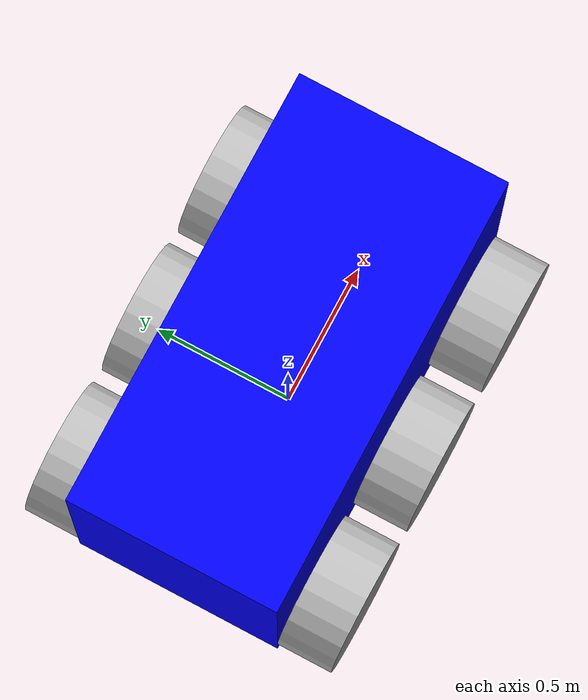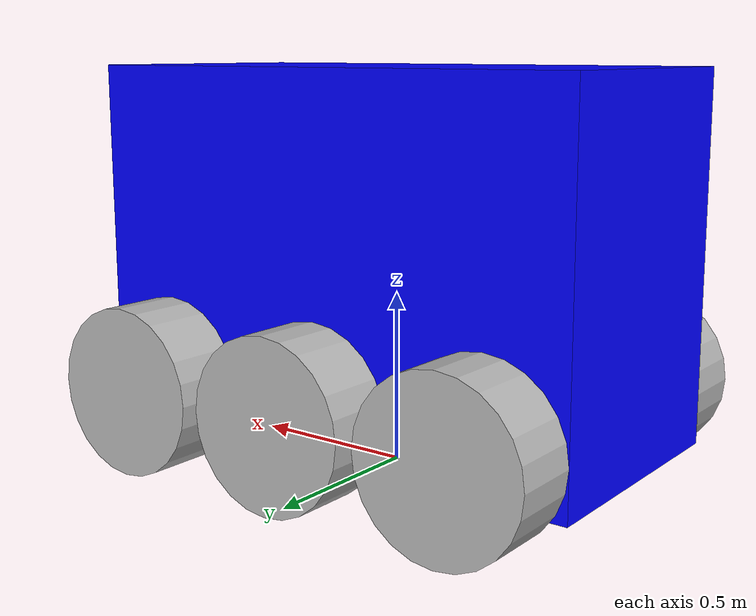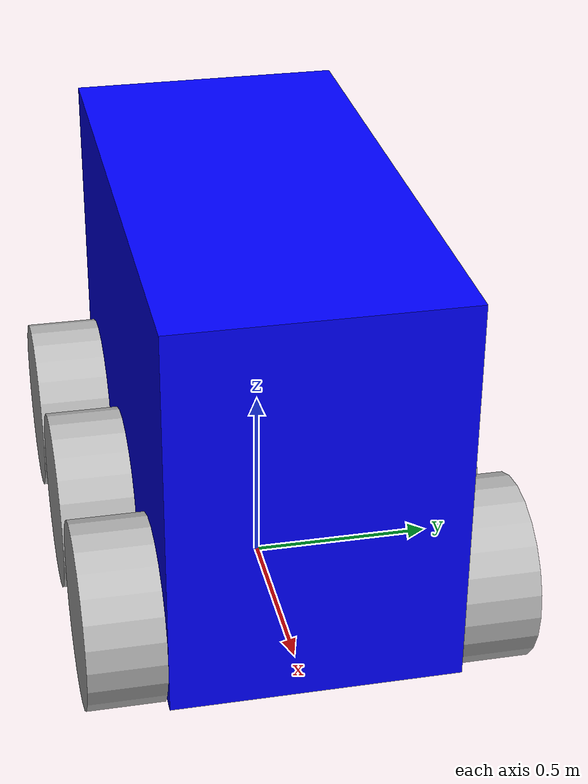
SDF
<?xml version="1.0" ?>
<sdf version="1.10">
  <model name='FLIP' canonical_link='chassis'>
    <pose>0 0 0 0 0 0</pose>

    <link name='chassis'>
      <pose relative_to='__model__'>0 0 0.625 0 0 0</pose>
      <inertial>
        <pose>0 0 0 0 0 0</pose>
        <mass>450.0</mass>
        <inertia>
          <ixx>62.438</ixx>
          <ixy>0</ixy>
          <ixz>0</ixz>
          <iyy>131.438</iyy>
          <iyz>0</iyz>
          <izz>111.188</izz>
        </inertia>
      </inertial>
      <visual name='visual'>
        <geometry><box><size>1.55 0.75 1.05</size></box></geometry>
        <material>
          <ambient>0.0 0.0 1.0 1</ambient>
          <diffuse>0.0 0.0 1.0 1</diffuse>
          <specular>0.0 0.0 1.0 1</specular>
        </material>
      </visual>
      <collision name='collision'>
        <geometry><box><size>1.55 0.75 1.05</size></box></geometry>
      </collision>
      <sensor name="imu_sensor" type="imu">
        <always_on>1</always_on>
        <update_rate>20</update_rate>
        <visualize>true</visualize>
        <topic>imu</topic>
      </sensor>
      <sensor name="gpu_lidar" type="gpu_lidar">
        <pose>0.6 0 0.3 0 0 0</pose>
        <always_on>1</always_on>
        <update_rate>10</update_rate>

				<frame_id>laser</frame_id>

        <lidar>
          <scan>
            <horizontal>
              <samples>180</samples>
              <resolution>1</resolution>
              <min_angle>-1.396263</min_angle>
              <max_angle>1.396263</max_angle>
            </horizontal>
            <vertical>
              <samples>1</samples>
              <resolution>1</resolution>
              <min_angle>0</min_angle>
              <max_angle>0</max_angle>
            </vertical>
          </scan>
          <range>
            <min>0.08</min>
            <max>10.0</max>
            <resolution>0.01</resolution>
          </range>
        </lidar>
        <visualize>true</visualize>
        <topic>lidar</topic>
      </sensor>
    </link>

    <!-- =============includes + plugin + joint van sensoren=========== -->
    <!-- THERMAL CAMERA -->
    <include>
      <uri>file:///workspace/models/plugins/thermal_camera.sdf</uri>
      <name>thermal_camera</name>
      <pose relative_to="chassis">0.3 0 0.4 0 0 0</pose>
    </include>

    <!-- RGB CAMERA -->
    <include>
      <uri>file:///workspace/models/plugins/camera.sdf</uri>
      <name>camera</name>
      <pose relative_to="chassis">0 0 1.05 0 0.3 0</pose>
    </include>

    <!-- FIXED JOINT: thermal camera aan chassis -->
    <joint name="thermal_camera_fixed" type="fixed">
      <parent>chassis</parent>
      <child>thermal_camera::thermal_body</child>
    </joint>

    <!-- FIXED JOINT: rgb camera aan chassis -->
    <joint name="camera_fixed" type="fixed">
      <parent>chassis</parent>
      <child>camera::camera_body</child>
    </joint>

    <link name='left_back_wheel'>
      <pose relative_to="chassis">-0.533 0.475 -0.383 -1.5707 0 0</pose>
      <inertial><mass>5</mass><inertia><ixx>0.694</ixx><ixy>0</ixy><ixz>0</ixz><iyy>1.460</iyy><iyz>0</iyz><izz>1.235</izz></inertia></inertial>
      <visual name='visual'><geometry><cylinder><radius>0.242</radius><length>0.2</length></cylinder></geometry></visual>
      <collision name='collision'><geometry><cylinder><radius>0.242</radius><length>0.2</length></cylinder></geometry></collision>
    </link>

    <link name='left_middle_wheel'>
      <pose relative_to="chassis">0 0.475 -0.383 -1.5707 0 0</pose>
      <inertial><mass>5</mass><inertia><ixx>0.694</ixx><ixy>0</ixy><ixz>0</ixz><iyy>1.460</iyy><iyz>0</iyz><izz>1.235</izz></inertia></inertial>
      <visual name='visual'><geometry><cylinder><radius>0.242</radius><length>0.2</length></cylinder></geometry></visual>
      <collision name='collision'><geometry><cylinder><radius>0.242</radius><length>0.2</length></cylinder></geometry></collision>
    </link>

    <link name='right_back_wheel'>
      <pose relative_to="chassis">-0.533 -0.475 -0.383 -1.5707 0 0</pose>
      <inertial><mass>5</mass><inertia><ixx>0.694</ixx><ixy>0</ixy><ixz>0</ixz><iyy>1.460</iyy><iyz>0</iyz><izz>1.235</izz></inertia></inertial>
      <visual name='visual'><geometry><cylinder><radius>0.242</radius><length>0.2</length></cylinder></geometry></visual>
      <collision name='collision'><geometry><cylinder><radius>0.242</radius><length>0.2</length></cylinder></geometry></collision>
    </link>

    <link name='right_middle_wheel'>
      <pose relative_to="chassis">0 -0.475 -0.383 -1.5707 0 0</pose>
      <inertial><mass>5</mass><inertia><ixx>0.694</ixx><ixy>0</ixy><ixz>0</ixz><iyy>1.460</iyy><iyz>0</iyz><izz>1.235</izz></inertia></inertial>
      <visual name='visual'><geometry><cylinder><radius>0.242</radius><length>0.2</length></cylinder></geometry></visual>
      <collision name='collision'><geometry><cylinder><radius>0.242</radius><length>0.2</length></cylinder></geometry></collision>
    </link>

    <link name='left_front_steer_link'>
      <pose relative_to="chassis">0.533 0.475 -0.383 0 0 0</pose>
      <inertial><mass>1.0</mass><inertia><ixx>0.01</ixx><ixy>0</ixy><ixz>0</ixz><iyy>0.01</iyy><iyz>0</iyz><izz>0.01</izz></inertia></inertial>
    </link>

    <link name='right_front_steer_link'>
      <pose relative_to="chassis">0.533 -0.475 -0.383 0 0 0</pose>
      <inertial><mass>1.0</mass><inertia><ixx>0.01</ixx><ixy>0</ixy><ixz>0</ixz><iyy>0.01</iyy><iyz>0</iyz><izz>0.01</izz></inertia></inertial>
    </link>

    <link name='left_front_wheel'>
      <pose relative_to="left_front_steer_link">0 0 0 -1.5707 0 0</pose>
      <inertial><mass>5</mass><inertia><ixx>0.694</ixx><ixy>0</ixy><ixz>0</ixz><iyy>1.460</iyy><iyz>0</iyz><izz>1.235</izz></inertia></inertial>
      <visual name='visual'>
        <geometry><cylinder><radius>0.242</radius><length>0.2</length></cylinder></geometry>
      </visual>
      <collision name='collision'><geometry><cylinder><radius>0.242</radius><length>0.2</length></cylinder></geometry></collision>
    </link>

    <link name='right_front_wheel'>
      <pose relative_to="right_front_steer_link">0 0 0 -1.5707 0 0</pose>
      <inertial><mass>5</mass><inertia><ixx>0.694</ixx><ixy>0</ixy><ixz>0</ixz><iyy>1.460</iyy><iyz>0</iyz><izz>1.235</izz></inertia></inertial>
      <visual name='visual'>
        <geometry><cylinder><radius>0.242</radius><length>0.2</length></cylinder></geometry>
      </visual>
      <collision name='collision'><geometry><cylinder><radius>0.242</radius><length>0.2</length></cylinder></geometry></collision>
    </link>

    <!-- Wheel joints -->
    <joint name="left_front_wheel_joint" type="revolute">
    <parent>chassis</parent>
    <child>left_front_wheel</child>
    <axis><xyz>0 0 1</xyz></axis>
    </joint>

    <joint name="left_middle_wheel_joint" type="revolute">
    <parent>chassis</parent>
    <child>left_middle_wheel</child>
    <axis><xyz>0 0 1</xyz></axis>
    </joint>

    <joint name="left_back_wheel_joint" type="revolute">
    <parent>chassis</parent>
    <child>left_back_wheel</child>
    <axis><xyz>0 0 1</xyz></axis>
    </joint>

    <joint name="right_front_wheel_joint" type="revolute">
    <parent>chassis</parent>
    <child>right_front_wheel</child>
    <axis><xyz>0 0 1</xyz></axis>
    </joint>

    <joint name="right_middle_wheel_joint" type="revolute">
    <parent>chassis</parent>
    <child>right_middle_wheel</child>
    <axis><xyz>0 0 1</xyz></axis>
    </joint>

    <joint name="right_back_wheel_joint" type="revolute">
    <parent>chassis</parent>
    <child>right_back_wheel</child>
    <axis><xyz>0 0 1</xyz></axis>
    </joint>

    <!-- Diff Drive Plugin -->
    <plugin
    filename="gz-sim-diff-drive-system"
    name="gz::sim::systems::DiffDrive">

    <!-- all 6 wheels driven -->
    <left_joint>left_back_wheel_joint</left_joint>
    <left_joint>left_middle_wheel_joint</left_joint>
    <left_joint>left_front_wheel_joint</left_joint>

    <right_joint>right_back_wheel_joint</right_joint>
    <right_joint>right_middle_wheel_joint</right_joint>
    <right_joint>right_front_wheel_joint</right_joint>

    <wheel_separation>0.95</wheel_separation>
    <wheel_radius>0.242</wheel_radius>

    <topic>/model/FLIP/cmd_vel</topic>
    <odom_topic>/model/FLIP/odometry</odom_topic>
    <tf_topic>/model/FLIP/tf</tf_topic>

    <frame_id>odom</frame_id>
    <child_frame_id>chassis</child_frame_id>

    </plugin>

    <!-- Moving Forward-->
    <plugin filename="gz-sim-triggered-publisher-system"
            name="gz::sim::systems::TriggeredPublisher">
        <input type="gz.msgs.Int32" topic="/keyboard/keypress">
            <match field="data">16777235</match>
        </input>
        <output type="gz.msgs.Twist" topic="/model/FLIP/cmd_vel">
            linear: {x: 0.5}, angular: {z: 0.0}
        </output>
    </plugin>

    <!-- Moving Backward-->
    <plugin filename="gz-sim-triggered-publisher-system"
            name="gz::sim::systems::TriggeredPublisher">
        <input type="gz.msgs.Int32" topic="/keyboard/keypress">
            <match field="data">16777237</match>
        </input>
        <output type="gz.msgs.Twist" topic="/model/FLIP/cmd_vel">
            linear: {x: -0.5}, angular: {z: 0.0}
        </output>
    </plugin>

    <!-- Moving left-->
    <plugin filename="gz-sim-triggered-publisher-system"
            name="gz::sim::systems::TriggeredPublisher">
        <input type="gz.msgs.Int32" topic="/keyboard/keypress">
            <match field="data">16777234</match>
        </input>
        <output type="gz.msgs.Twist" topic="/model/FLIP/cmd_vel">
						<!-- WARNING: Changed angular velocity to a lower value to increase occupancy map accuracy -->
            linear: {x: 0.0}, angular: {z: 0.3}
        </output>
    </plugin>

    <!-- Moving right-->
    <plugin filename="gz-sim-triggered-publisher-system"
            name="gz::sim::systems::TriggeredPublisher">
        <input type="gz.msgs.Int32" topic="/keyboard/keypress">
            <match field="data">16777236</match>
        </input>
        <output type="gz.msgs.Twist" topic="/model/FLIP/cmd_vel">
            linear: {x: 0.0}, angular: {z: -0.3}
        </output>
    </plugin>
  </model>
</sdf>

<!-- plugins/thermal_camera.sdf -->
<sdf version="1.10">

  <model name="thermal_camera_model" canonical_link="thermal_body">
    <pose>0 0 0 0 0 0</pose>
    <static>false</static>

    <!-- Gecombineerde thermal camera link -->
    <link name="thermal_body">
      <pose>0 0 0 0 0 0</pose>

      <!-- Behuizing -->
      <visual name="thermal_visual">
        <geometry>
          <box>
            <size>0.1 0.1 0.1</size>
          </box>
        </geometry>
        <material>
          <ambient>1 0 0 1</ambient>
          <diffuse>1 0 0 1</diffuse>
          <specular>0.2 0.2 0.2 1</specular>
        </material>
      </visual>

      <!-- Collision -->
      <collision name="thermal_collision">
        <geometry>
          <box>
            <size>0.1 0.1 0.1</size>
          </box>
        </geometry>
      </collision>

      <!-- Massa -->
      <inertial>
        <mass>0.5</mass>
        <inertia>
          <ixx>0.001</ixx>
          <iyy>0.001</iyy>
          <izz>0.001</izz>
          <ixy>0</ixy>
          <ixz>0</ixz>
          <iyz>0</iyz>
        </inertia>
      </inertial>

      <!-- Thermal sensor (nu in dezelfde link) -->
      <sensor name="thermal_camera" type="thermal">
        <pose>0 0 0 0 0 0</pose>
        <always_on>true</always_on>
        <update_rate>30</update_rate>
        <visualize>true</visualize>

        <topic>/FLIP/thermal_camera</topic>

        <camera>
          <horizontal_fov>1.047</horizontal_fov>
          <image>
            <width>320</width>
            <height>240</height>
            <format>L16</format>
          </image>
          <clip>
            <near>0.1</near>
            <far>100</far>
          </clip>
        </camera>
      </sensor>

    </link>

  </model>
</sdf>

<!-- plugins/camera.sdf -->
<sdf version="1.10">

  <model name="camera_model" canonical_link="camera_body">
    <pose>0 0 0 0 0 0</pose>
    <static>false</static>

    <link name="camera_body">
      <pose relative_to='__model__'>0 0 0 0 0 0</pose>

      <visual name="camera_visual">
        <geometry>
          <box>
            <size>0.1 0.1 0.1</size>
          </box>
        </geometry>
        <material>
          <ambient>0.5 0.5 0.5 1</ambient>
          <diffuse>0.7 0.7 0.7 1</diffuse>
          <specular>0.3 0.3 0.3 1</specular>
        </material>
      </visual>

      <collision name="camera_collision">
        <geometry>
          <box>
            <size>0.1 0.1 0.1</size>
          </box>
        </geometry>
      </collision>

      <inertial>
        <mass>0.5</mass>
        <inertia>
          <ixx>0.001</ixx>
          <ixy>0</ixy>
          <ixz>0</ixz>
          <iyy>0.001</iyy>
          <iyz>0</iyz>
          <izz>0.001</izz>
        </inertia>
      </inertial>
    </link>

    <link name="camera_link">
      <sensor name="camera" type="camera">
        <pose>0 0 0 0 0 0</pose>
        <always_on>true</always_on>
        <update_rate>30</update_rate>

        <camera>
          <horizontal_fov>1.047</horizontal_fov>
          <image>
            <width>640</width>
            <height>480</height>
            <format>R8G8B8</format>
          </image>
          <clip>
            <near>0.1</near>
            <far>100</far>
          </clip>
        </camera>

        <topic>/camera/image</topic>
      </sensor>
    </link>

  </model>
</sdf>
